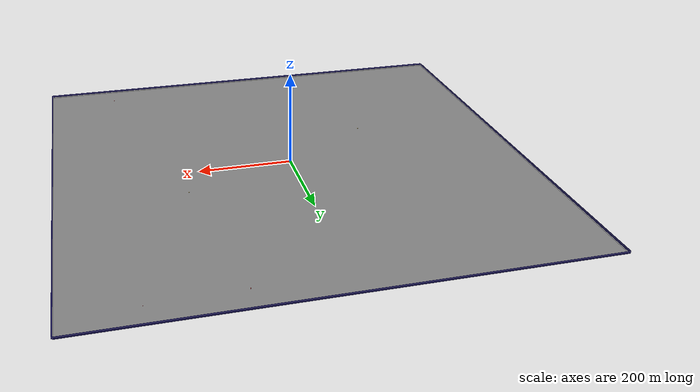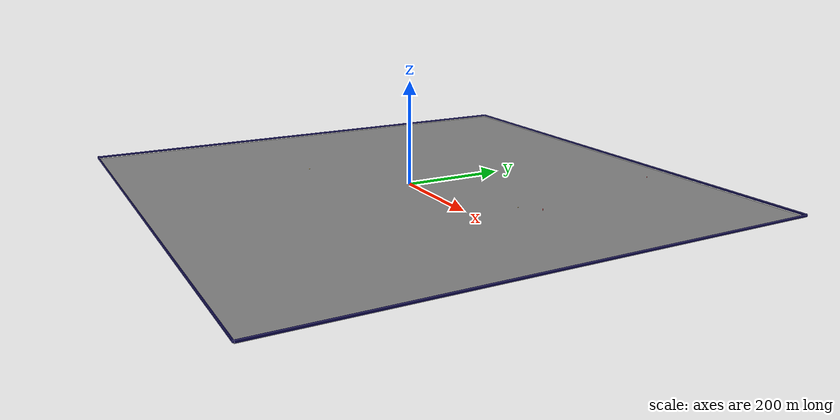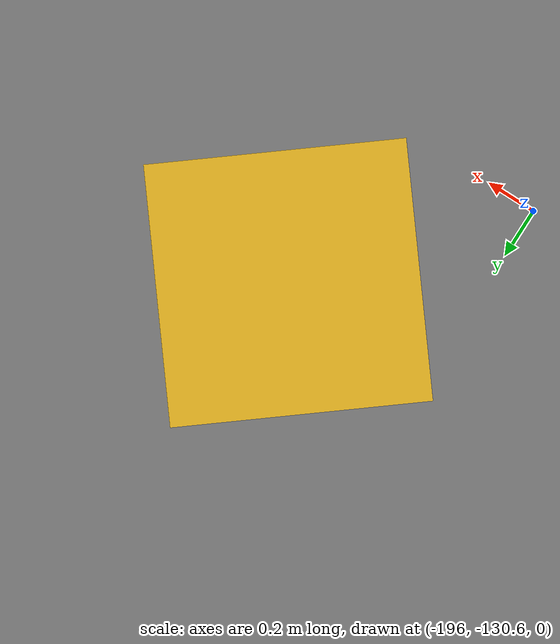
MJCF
<mujoco model="unnamed_model">
  <default>
    <default class="/" />
    <default class="border/" />
    <default class="border_1/" />
    <default class="border_2/" />
    <default class="border_3/" />
    <default class="agentplaceholder/" />
    <default class="placeholder_box/" />
    <default class="tree0/" />
    <default class="tree1/" />
    <default class="stone/" />
    <default class="stone_1/" />
  </default>
  <worldbody>
    <body name="border/">
      <body name="border/border" pos="0 501 2">
        <geom name="border/border_geom" class="border/" type="box" size="500 1 2" rgba="0.035000000000000003 0.016 0.28999999999999998 1" />
      </body>
    </body>
    <body name="border_1/">
      <body name="border_1/border" pos="0 -501 2">
        <geom name="border_1/border_geom" class="border_1/" type="box" size="500 1 2" rgba="0.035000000000000003 0.016 0.28999999999999998 1" />
      </body>
    </body>
    <body name="border_2/">
      <body name="border_2/border" pos="501 0 2">
        <geom name="border_2/border_geom" class="border_2/" type="box" size="1 500 2" rgba="0.035000000000000003 0.016 0.28999999999999998 1" />
      </body>
    </body>
    <body name="border_3/">
      <body name="border_3/border" pos="-501 0 2">
        <geom name="border_3/border_geom" class="border_3/" type="box" size="1 500 2" rgba="0.035000000000000003 0.016 0.28999999999999998 1" />
      </body>
    </body>
    <body euler="0 0 -158.77385731860701" name="agentplaceholder/">
      <joint name="agentplaceholder/boxagent_freeJoint/" class="/" type="free" />
      <body name="agentplaceholder/agentplaceholder" pos="-250 0 3" euler="0 0 0">
        <geom name="agentplaceholder/boxagent_geom" class="agentplaceholder/" type="box" size="0.5 0.5 0.5" rgba="0.94899999999999995 0.74509999999999998 0.1333 1" euler="0 0 0" />
      </body>
    </body>
    <body name="placeholder_box/">
      <body name="placeholder_box/placeholder_box" pos="-195.36255 -129.87239999999997 0.5" euler="0 0 -141.67740579571284">
        <geom name="placeholder_box/box_geom" class="placeholder_box/" type="box" size="0.5 0.5 0.5" rgba="0.94899999999999995 0.74509999999999998 0.1333 1" euler="0 0 0" />
      </body>
    </body>
    <body name="tree0/">
      <body name="tree0/tree0" pos="178.4829 443.49389999999994 0.10000000000000001" euler="0 0 12.18368060497852">
        <geom name="tree0/tree_geom" class="tree0/" type="box" size="0.10000000000000001 0.10000000000000001 2" rgba="1 0 0 1" />
      </body>
    </body>
    <body name="tree1/">
      <body name="tree1/tree1" pos="349.79755 -436.56970000000001 0.10000000000000001" euler="0 0 -61.536715611812909">
        <geom name="tree1/tree_geom" class="tree1/" type="box" size="0.10000000000000001 0.10000000000000001 2" rgba="1 0 0 1" />
      </body>
    </body>
    <body name="stone/">
      <body name="stone/stone" pos="255.91354999999999 127.35979999999995 0.10000000000000001" euler="0 0 55.923863229912769">
        <geom name="stone/stone_geom" class="stone/" type="box" size="0.10000000000000001 0.10000000000000001 2" rgba="1 0 0 1" />
      </body>
    </body>
    <body name="stone_1/">
      <body name="stone_1/stone" pos="357.8365 446.52999999999997 0.10000000000000001" euler="0 0 118.42651155525124">
        <geom name="stone_1/stone_geom" class="stone_1/" type="box" size="0.10000000000000001 0.10000000000000001 2" rgba="1 0 0 1" />
      </body>
    </body>
    <geom name="base_plane" class="/" type="plane" size="500 500 0.10000000000000001" />
  </worldbody>
</mujoco>
